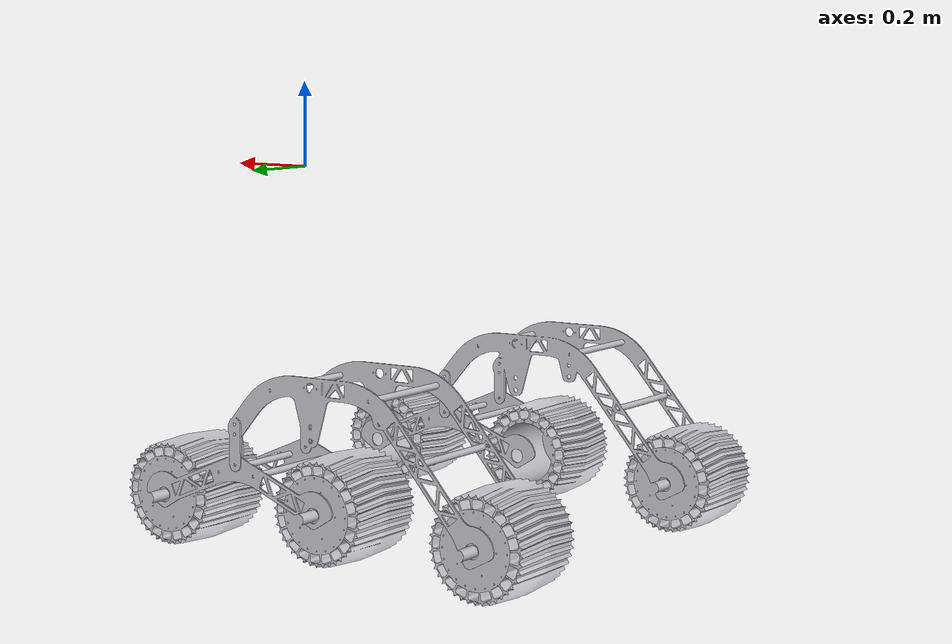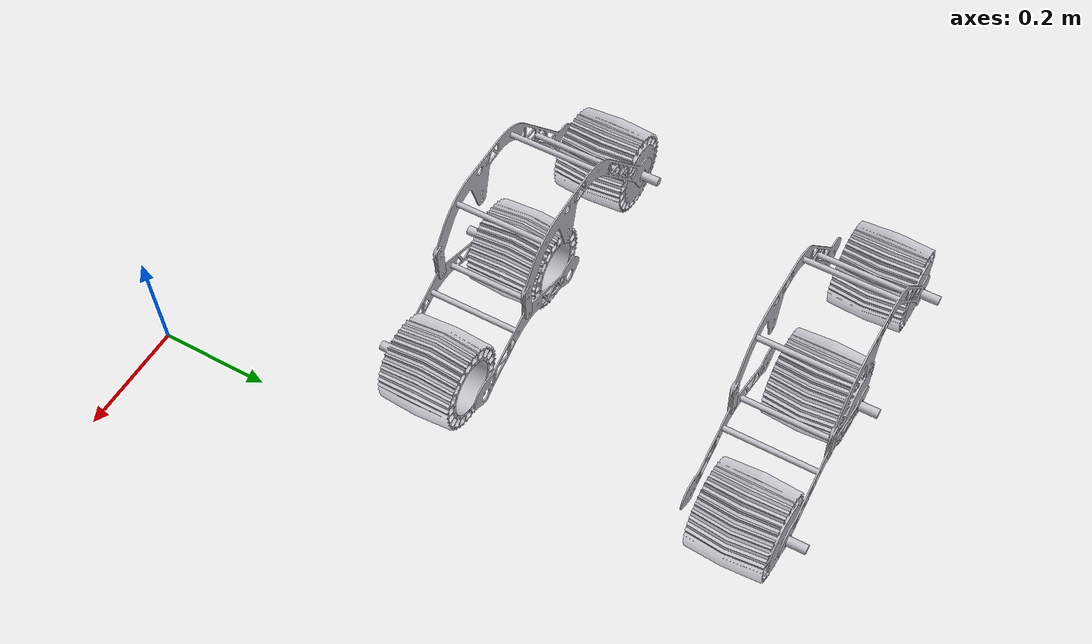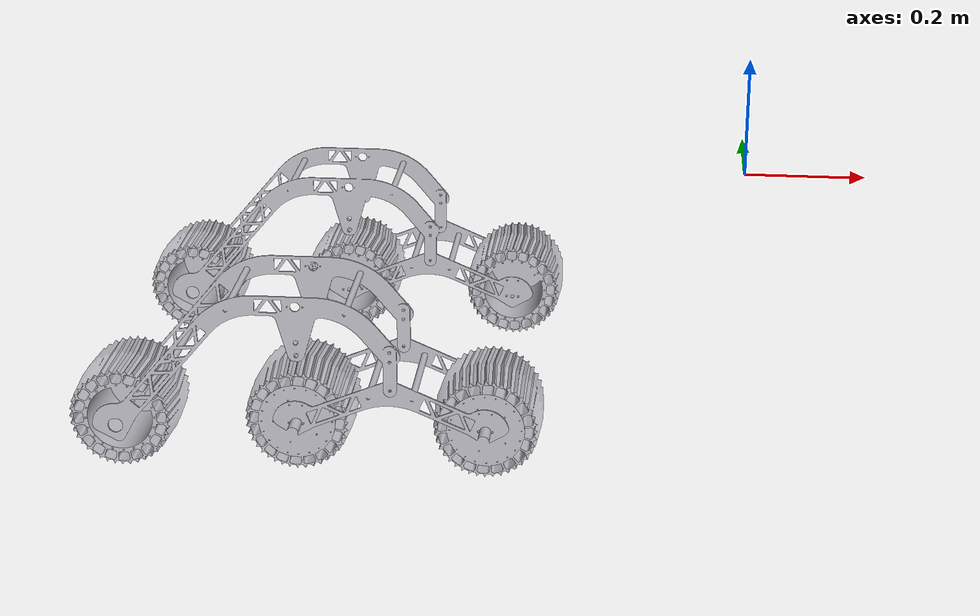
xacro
<?xml version="1.0" ?>
<robot name="robot" xmlns:xacro="http://www.ros.org/wiki/xacro">

<xacro:include filename="$(find robot_description)/urdf/materials.xacro" />
<xacro:include filename="$(find robot_description)/urdf/robot.trans" />
<xacro:include filename="$(find robot_description)/urdf/robot.gazebo" />

<link name="base_link">
  <inertial>
    <origin xyz="-0.3497034480857745 -0.4961224133505976 0.09428441033844955" rpy="0 0 0"/>
    <mass value="17.719416949374274"/>
    <inertia ixx="0.704305" iyy="1.471877" izz="1.004356" ixy="-0.000419" iyz="-0.000142" ixz="-0.000745"/>
  </inertial>
  <visual>
    <origin xyz="0 0 0" rpy="1.5708 0 0"/>
    <geometry>
      <mesh filename="package://robot_description/meshes/base_link.stl" scale="0.001 0.001 0.001"/>
    </geometry>
    <material name="silver"/>
  </visual>
  <collision>
    <origin xyz="0 0 0" rpy="1.5708 0 0"/>
    <geometry>
      <mesh filename="package://robot_description/meshes/base_link.stl" scale="0.001 0.001 0.001"/>
    </geometry>
  </collision>
</link>

<link name="right_big_pivot_1">
  <inertial>
    <origin xyz="-0.05850375195341356 -0.10854805486368158 -0.07469415008418884" rpy="0 0 0"/>
    <mass value="2.2415377387384887"/>
    <inertia ixx="0.033507" iyy="0.086535" izz="0.078447" ixy="-0.014743" iyz="-1e-06" ixz="2e-05"/>
  </inertial>
  <visual>
    <origin xyz="0.34925 0.734527 -0.14605" rpy="1.5708 0 0"/>
    <geometry>
      <mesh filename="package://robot_description/meshes/right_big_pivot_1.stl" scale="0.001 0.001 0.001"/>
    </geometry>
    <material name="silver"/>
  </visual>
  <collision>
    <origin xyz="0.34925 0.734527 -0.14605" rpy="1.5708 0 0"/>
    <geometry>
      <mesh filename="package://robot_description/meshes/right_big_pivot_1.stl" scale="0.001 0.001 0.001"/>
    </geometry>
  </collision>
</link>

<link name="left_big_pivot_1">
  <inertial>
    <origin xyz="-0.05850375195478724 0.1086219451363166 -0.07469415008419117" rpy="0 0 0"/>
    <mass value="2.2415377387384736"/>
    <inertia ixx="0.033507" iyy="0.086535" izz="0.078447" ixy="-0.014743" iyz="-1e-06" ixz="2e-05"/>
  </inertial>
  <visual>
    <origin xyz="0.34925 0.257568 -0.14605" rpy="1.5708 0 0"/>
    <geometry>
      <mesh filename="package://robot_description/meshes/left_big_pivot_1.stl" scale="0.001 0.001 0.001"/>
    </geometry>
    <material name="silver"/>
  </visual>
  <collision>
    <origin xyz="0.34925 0.257568 -0.14605" rpy="1.5708 0 0"/>
    <geometry>
      <mesh filename="package://robot_description/meshes/left_big_pivot_1.stl" scale="0.001 0.001 0.001"/>
    </geometry>
  </collision>
</link>

<link name="right_little_pivot_1">
  <inertial>
    <origin xyz="-0.00022059559125406358 -0.10783319760475599 -0.03446395454671583" rpy="0 0 0"/>
    <mass value="1.158287566383538"/>
    <inertia ixx="0.010707" iyy="0.023908" izz="0.01462" ixy="8.5e-05" iyz="0.000121" ixz="1e-06"/>
  </inertial>
  <visual>
    <origin xyz="0.174498 0.043573 0.0127" rpy="1.5708 0 0"/>
    <geometry>
      <mesh filename="package://robot_description/meshes/right_little_pivot_1.stl" scale="0.001 0.001 0.001"/>
    </geometry>
    <material name="silver"/>
  </visual>
  <collision>
    <origin xyz="0.174498 0.043573 0.0127" rpy="1.5708 0 0"/>
    <geometry>
      <mesh filename="package://robot_description/meshes/right_little_pivot_1.stl" scale="0.001 0.001 0.001"/>
    </geometry>
  </collision>
</link>

<link name="left_little_pivot_1">
  <inertial>
    <origin xyz="-0.00022059558986731176 0.10298680239524349 -0.03446395454671311" rpy="0 0 0"/>
    <mass value="1.158287566383538"/>
    <inertia ixx="0.010707" iyy="0.023908" izz="0.01462" ixy="8.5e-05" iyz="0.000121" ixz="1e-06"/>
  </inertial>
  <visual>
    <origin xyz="0.174498 0.948649 0.0127" rpy="1.5708 0 0"/>
    <geometry>
      <mesh filename="package://robot_description/meshes/left_little_pivot_1.stl" scale="0.001 0.001 0.001"/>
    </geometry>
    <material name="silver"/>
  </visual>
  <collision>
    <origin xyz="0.174498 0.948649 0.0127" rpy="1.5708 0 0"/>
    <geometry>
      <mesh filename="package://robot_description/meshes/left_little_pivot_1.stl" scale="0.001 0.001 0.001"/>
    </geometry>
  </collision>
</link>

<link name="wheel_1">
  <inertial>
    <origin xyz="8.376931592835035e-09 0.08910710362063429 -4.49129045065888e-09" rpy="0 0 0"/>
    <mass value="11.601933377005569"/>
    <inertia ixx="0.066678" iyy="0.066678" izz="0.074767" ixy="0.0" iyz="-0.0" ixz="0.0"/>
  </inertial>
  <visual>
    <origin xyz="0.698754 0.254393 0.10795" rpy="1.5708 0 0"/>
    <geometry>
      <mesh filename="package://robot_description/meshes/wheel_1.stl" scale="0.001 0.001 0.001"/>
    </geometry>
    <material name="silver"/>
  </visual>
  <collision>
    <origin xyz="0.698754 0.254393 0.10795" rpy="1.5708 0 0"/>
    <geometry>
      <mesh filename="package://robot_description/meshes/wheel_1.stl" scale="0.001 0.001 0.001"/>
    </geometry>
  </collision>
</link>

<link name="wheel_2">
  <inertial>
    <origin xyz="-7.764208220795155e-08 -0.08910782454769867 -4.0233125182809193e-07" rpy="0 0 0"/>
    <mass value="11.601933377005569"/>
    <inertia ixx="0.066678" iyy="0.066678" izz="0.074767" ixy="-0.0" iyz="-0.0" ixz="-0.0"/>
  </inertial>
  <visual>
    <origin xyz="0.352782 0.043573 0.08776" rpy="1.5708 0 0"/>
    <geometry>
      <mesh filename="package://robot_description/meshes/wheel_2.stl" scale="0.001 0.001 0.001"/>
    </geometry>
    <material name="silver"/>
  </visual>
  <collision>
    <origin xyz="0.352782 0.043573 0.08776" rpy="1.5708 0 0"/>
    <geometry>
      <mesh filename="package://robot_description/meshes/wheel_2.stl" scale="0.001 0.001 0.001"/>
    </geometry>
  </collision>
</link>

<link name="wheel_3">
  <inertial>
    <origin xyz="-3.618419096582462e-07 -0.089107824547699 -4.6688623511759175e-07" rpy="0 0 0"/>
    <mass value="11.601933377005569"/>
    <inertia ixx="0.066678" iyy="0.066678" izz="0.074767" ixy="-0.0" iyz="-0.0" ixz="-0.0"/>
  </inertial>
  <visual>
    <origin xyz="-0.002811 0.043573 0.090036" rpy="1.5708 0 0"/>
    <geometry>
      <mesh filename="package://robot_description/meshes/wheel_3.stl" scale="0.001 0.001 0.001"/>
    </geometry>
    <material name="silver"/>
  </visual>
  <collision>
    <origin xyz="-0.002811 0.043573 0.090036" rpy="1.5708 0 0"/>
    <geometry>
      <mesh filename="package://robot_description/meshes/wheel_3.stl" scale="0.001 0.001 0.001"/>
    </geometry>
  </collision>
</link>

<link name="wheel_4">
  <inertial>
    <origin xyz="8.378312821299971e-09 -0.08910782454769894 4.491294891550979e-09" rpy="0 0 0"/>
    <mass value="11.601933377005569"/>
    <inertia ixx="0.066678" iyy="0.066678" izz="0.074767" ixy="-0.0" iyz="-0.0" ixz="-0.0"/>
  </inertial>
  <visual>
    <origin xyz="0.698754 0.737702 0.10795" rpy="1.5708 0 0"/>
    <geometry>
      <mesh filename="package://robot_description/meshes/wheel_4.stl" scale="0.001 0.001 0.001"/>
    </geometry>
    <material name="silver"/>
  </visual>
  <collision>
    <origin xyz="0.698754 0.737702 0.10795" rpy="1.5708 0 0"/>
    <geometry>
      <mesh filename="package://robot_description/meshes/wheel_4.stl" scale="0.001 0.001 0.001"/>
    </geometry>
  </collision>
</link>

<link name="wheel_5">
  <inertial>
    <origin xyz="-7.764069687166142e-08 -0.08910782454769917 -4.0233124987132385e-07" rpy="0 0 0"/>
    <mass value="11.601933377005569"/>
    <inertia ixx="0.066678" iyy="0.066678" izz="0.074767" ixy="-0.0" iyz="-0.0" ixz="-0.0"/>
  </inertial>
  <visual>
    <origin xyz="0.352782 0.737829 0.08776" rpy="1.5708 0 0"/>
    <geometry>
      <mesh filename="package://robot_description/meshes/wheel_5.stl" scale="0.001 0.001 0.001"/>
    </geometry>
    <material name="silver"/>
  </visual>
  <collision>
    <origin xyz="0.352782 0.737829 0.08776" rpy="1.5708 0 0"/>
    <geometry>
      <mesh filename="package://robot_description/meshes/wheel_5.stl" scale="0.001 0.001 0.001"/>
    </geometry>
  </collision>
</link>

<link name="wheel_6">
  <inertial>
    <origin xyz="-3.618405238158505e-07 -0.08910782454769894 -4.6688623286939013e-07" rpy="0 0 0"/>
    <mass value="11.601933377005569"/>
    <inertia ixx="0.066678" iyy="0.066678" izz="0.074767" ixy="-0.0" iyz="-0.0" ixz="-0.0"/>
  </inertial>
  <visual>
    <origin xyz="-0.002811 0.737829 0.090036" rpy="1.5708 0 0"/>
    <geometry>
      <mesh filename="package://robot_description/meshes/wheel_6.stl" scale="0.001 0.001 0.001"/>
    </geometry>
    <material name="silver"/>
  </visual>
  <collision>
    <origin xyz="-0.002811 0.737829 0.090036" rpy="1.5708 0 0"/>
    <geometry>
      <mesh filename="package://robot_description/meshes/wheel_6.stl" scale="0.001 0.001 0.001"/>
    </geometry>
  </collision>
</link>

<joint name="Revolute 1" type="continuous">
  <origin xyz="-0.34925 -0.734527 0.14605" rpy="0 0 0"/>
  <parent link="base_link"/>
  <child link="right_big_pivot_1"/>
  <axis xyz="0.0 -1.0 0.0"/>
</joint>

<joint name="Revolute 3" type="continuous">
  <origin xyz="-0.34925 -0.257568 0.14605" rpy="0 0 0"/>
  <parent link="base_link"/>
  <child link="left_big_pivot_1"/>
  <axis xyz="0.0 1.0 0.0"/>
</joint>

<joint name="Revolute 4" type="continuous">
  <origin xyz="0.174752 0.213995 -0.15875" rpy="0 0 0"/>
  <parent link="left_big_pivot_1"/>
  <child link="right_little_pivot_1"/>
  <axis xyz="0.0 1.0 0.0"/>
</joint>

<joint name="Revolute 5" type="continuous">
  <origin xyz="0.174752 -0.214122 -0.15875" rpy="0 0 0"/>
  <parent link="right_big_pivot_1"/>
  <child link="left_little_pivot_1"/>
  <axis xyz="0.0 1.0 0.0"/>
</joint>

<joint name="Revolute 6" type="continuous">
  <origin xyz="-0.349504 0.003175 -0.254" rpy="0 0 0"/>
  <parent link="left_big_pivot_1"/>
  <child link="wheel_1"/>
  <axis xyz="0.0 -1.0 0.0"/>
</joint>

<joint name="Revolute 7" type="continuous">
  <origin xyz="-0.178284 0.0 -0.07506" rpy="0 0 0"/>
  <parent link="right_little_pivot_1"/>
  <child link="wheel_2"/>
  <axis xyz="0.0 -1.0 0.0"/>
</joint>

<joint name="Revolute 8" type="continuous">
  <origin xyz="0.177309 0.0 -0.077336" rpy="0 0 0"/>
  <parent link="right_little_pivot_1"/>
  <child link="wheel_3"/>
  <axis xyz="0.0 1.0 0.0"/>
</joint>

<joint name="Revolute 9" type="continuous">
  <origin xyz="-0.349504 -0.003175 -0.254" rpy="0 0 0"/>
  <parent link="right_big_pivot_1"/>
  <child link="wheel_4"/>
  <axis xyz="0.0 -1.0 0.0"/>
</joint>

<joint name="Revolute 10" type="continuous">
  <origin xyz="-0.178284 0.21082 -0.07506" rpy="0 0 0"/>
  <parent link="left_little_pivot_1"/>
  <child link="wheel_5"/>
  <axis xyz="0.0 -1.0 0.0"/>
</joint>

<joint name="Revolute 11" type="continuous">
  <origin xyz="0.177309 0.21082 -0.077336" rpy="0 0 0"/>
  <parent link="left_little_pivot_1"/>
  <child link="wheel_6"/>
  <axis xyz="0.0 1.0 0.0"/>
</joint>

</robot>

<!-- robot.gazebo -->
<robot name="robot" xmlns:xacro="http://www.ros.org/wiki/xacro" >

<xacro:property name="body_color" value="Gazebo/Silver" />

<gazebo>
  <plugin name="control" filename="libgazebo_ros_control.so"/>
</gazebo>
<gazebo reference="base_link">
  <material>${body_color}</material>
  <mu1>0.2</mu1>
  <mu2>0.2</mu2>
  <selfCollide>true</selfCollide>
  <gravity>true</gravity>
</gazebo>

<gazebo reference="right_big_pivot_1">
  <material>${body_color}</material>
  <mu1>0.2</mu1>
  <mu2>0.2</mu2>
  <selfCollide>true</selfCollide>
</gazebo>

<gazebo reference="left_big_pivot_1">
  <material>${body_color}</material>
  <mu1>0.2</mu1>
  <mu2>0.2</mu2>
  <selfCollide>true</selfCollide>
</gazebo>

<gazebo reference="right_little_pivot_1">
  <material>${body_color}</material>
  <mu1>0.2</mu1>
  <mu2>0.2</mu2>
  <selfCollide>true</selfCollide>
</gazebo>

<gazebo reference="left_little_pivot_1">
  <material>${body_color}</material>
  <mu1>0.2</mu1>
  <mu2>0.2</mu2>
  <selfCollide>true</selfCollide>
</gazebo>

<gazebo reference="wheel_1">
  <material>${body_color}</material>
  <mu1>0.2</mu1>
  <mu2>0.2</mu2>
  <selfCollide>true</selfCollide>
</gazebo>

<gazebo reference="wheel_2">
  <material>${body_color}</material>
  <mu1>0.2</mu1>
  <mu2>0.2</mu2>
  <selfCollide>true</selfCollide>
</gazebo>

<gazebo reference="wheel_3">
  <material>${body_color}</material>
  <mu1>0.2</mu1>
  <mu2>0.2</mu2>
  <selfCollide>true</selfCollide>
</gazebo>

<gazebo reference="wheel_4">
  <material>${body_color}</material>
  <mu1>0.2</mu1>
  <mu2>0.2</mu2>
  <selfCollide>true</selfCollide>
</gazebo>

<gazebo reference="wheel_5">
  <material>${body_color}</material>
  <mu1>0.2</mu1>
  <mu2>0.2</mu2>
  <selfCollide>true</selfCollide>
</gazebo>

<gazebo reference="wheel_6">
  <material>${body_color}</material>
  <mu1>0.2</mu1>
  <mu2>0.2</mu2>
  <selfCollide>true</selfCollide>
</gazebo>

</robot>
